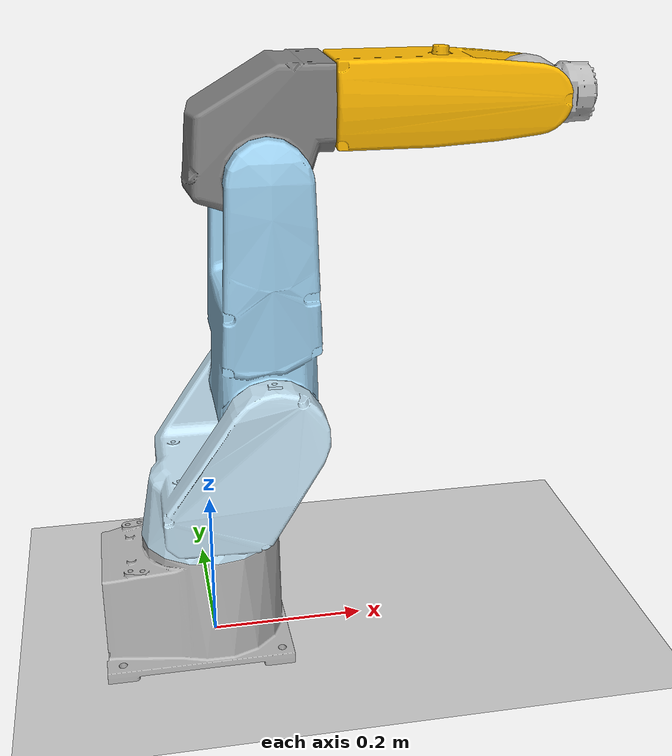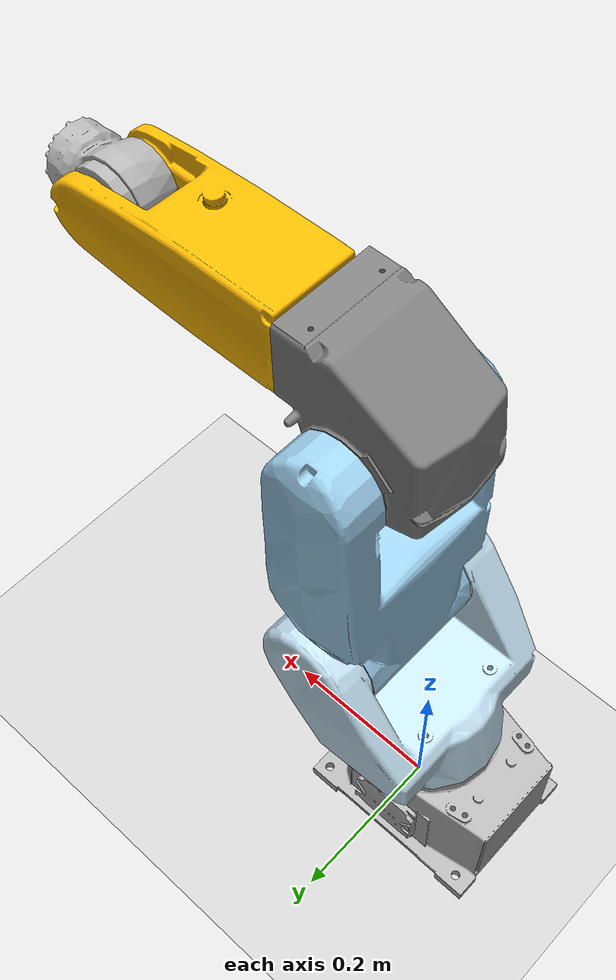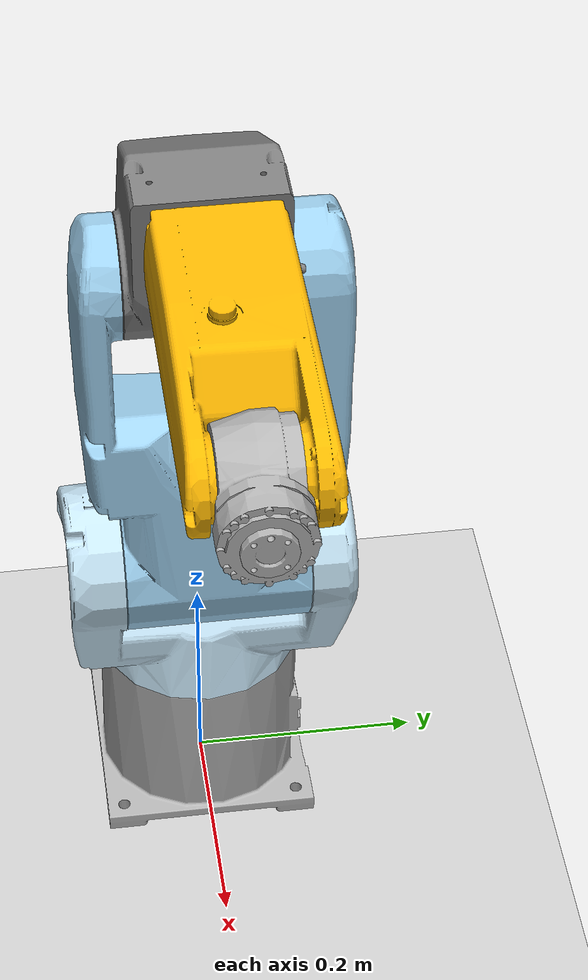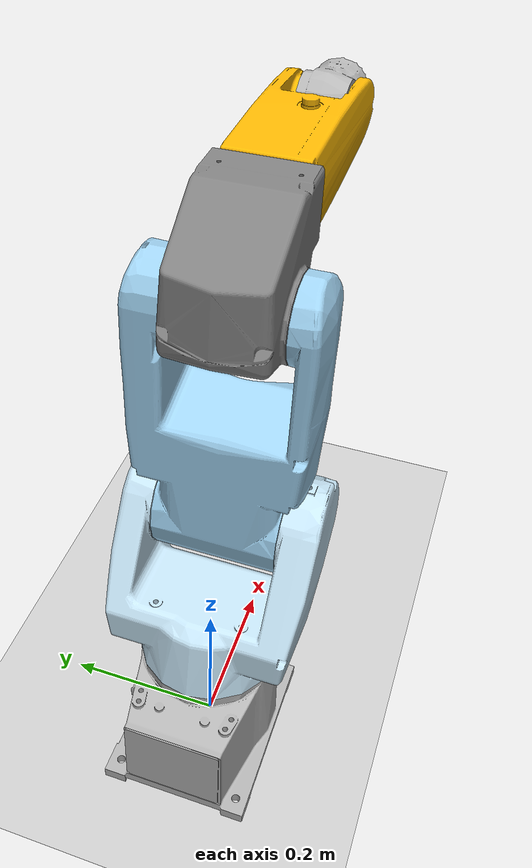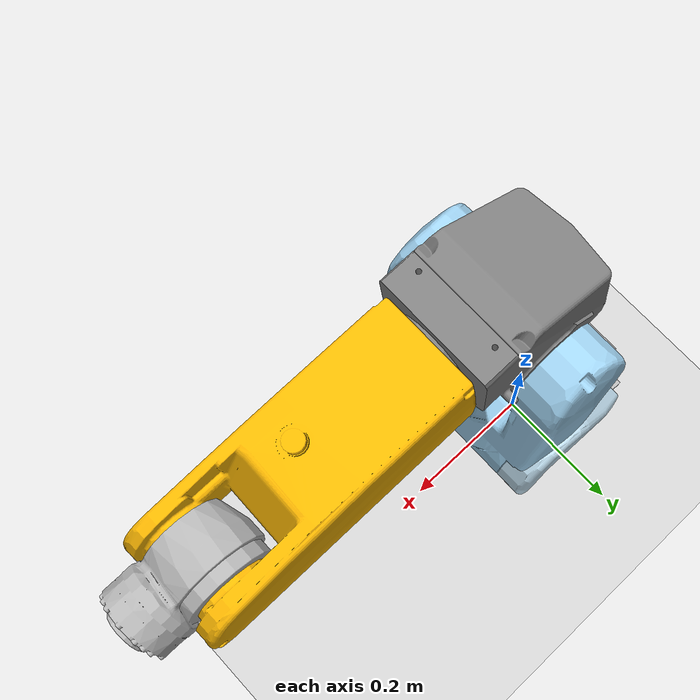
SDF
<?xml version="1.0" ?>
<sdf version="1.9">
  <world name="lr_mate_world">

    <!-- Physics -->
    <physics name="1ms" type="ignored">
      <max_step_size>0.001</max_step_size>
      <real_time_factor>1.0</real_time_factor>
    </physics>

    <!-- Required Ignition Gazebo plugins -->
    <plugin filename="ignition-gazebo-physics-system"
            name="ignition::gazebo::systems::Physics"/>
    <plugin filename="ignition-gazebo-user-commands-system"
            name="ignition::gazebo::systems::UserCommands"/>
    <plugin filename="ignition-gazebo-scene-broadcaster-system"
            name="ignition::gazebo::systems::SceneBroadcaster"/>

    <!-- Sun light -->
    <light name="sun" type="directional">
      <cast_shadows>true</cast_shadows>
      <pose>0 0 10 0 0 0</pose>
      <diffuse>1 1 1 1</diffuse>
      <specular>0.5 0.5 0.5 1</specular>
      <direction>-0.5 0.1 -0.9</direction>
    </light>

    <!-- Ground plane -->
    <model name="ground_plane">
      <static>true</static>
      <link name="link">
        <collision name="collision">
          <geometry>
            <plane>
              <normal>0 0 1</normal>
              <size>100 100</size>
            </plane>
          </geometry>
        </collision>
        <visual name="visual">
          <geometry>
            <plane>
              <normal>0 0 1</normal>
              <size>100 100</size>
            </plane>
          </geometry>
          <material>
            <ambient>0.8 0.8 0.8 1</ambient>
            <diffuse>0.8 0.8 0.8 1</diffuse>
          </material>
        </visual>
      </link>
    </model>

    <!-- LR Mate 200iC — load trực tiếp bằng đường dẫn tuyệt đối -->
    <include>
      <uri>
        file:///home/pread/Project/robot_envirionment/multi-agent-in-arena-simulation/ros2_ws/src/gazebo/sml_description/models/lr_mate_200ic/arm.sdf
      </uri>
      <pose>0 0 0 0 0 0</pose>
    </include>

  </world>
</sdf>

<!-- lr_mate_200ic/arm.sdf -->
<sdf version="1.9">
  <model name="lr_mate_200ic">

    <static>true</static>

    <link name="root">

      <inertial>
        <pose>0 0 0.3 0 0 0</pose>
        <mass>15.0</mass>
        <inertia>
          <ixx>0.5</ixx><ixy>0.0</ixy><ixz>0.0</ixz>
          <iyy>0.5</iyy><iyz>0.0</iyz>
          <izz>0.5</izz>
        </inertia>
      </inertial>

      <collision name="base_collision">
        <pose>0 0 0 0 0 0</pose>
        <geometry>
          <mesh>
            <uri>file:///home/pread/Project/robot_envirionment/multi-agent-in-arena-simulation/ros2_ws/src/gazebo/sml_description/models/lr_mate_200ic/meshes/base.stl</uri>
            <scale>1 1 1</scale>
          </mesh>
        </geometry>
      </collision>

      <!-- axis3 (grey) -->
      <visual name="visual_axis3">
        <pose>0.075 9.32387e-17 0.63 0 0 0</pose>
        <geometry>
          <mesh>
            <uri>file:///home/pread/Project/robot_envirionment/multi-agent-in-arena-simulation/ros2_ws/src/gazebo/sml_description/models/lr_mate_200ic/meshes/axis3.stl</uri>
            <scale>1 1 1</scale>
          </mesh>
        </geometry>
        <material>
          <ambient>0.498 0.498 0.498 1</ambient>
          <diffuse>0.498 0.498 0.498 1</diffuse>
          <specular>0.1 0.1 0.1 1</specular>
        </material>
      </visual>

      <!-- axis2 (blue_light) -->
      <visual name="visual_axis2">
        <pose>0.075 1.1391e-16 0.33 0 0 0</pose>
        <geometry>
          <mesh>
            <uri>file:///home/pread/Project/robot_envirionment/multi-agent-in-arena-simulation/ros2_ws/src/gazebo/sml_description/models/lr_mate_200ic/meshes/axis2.stl</uri>
            <scale>1 1 1</scale>
          </mesh>
        </geometry>
        <material>
          <ambient>0.615 0.811 0.929 1</ambient>
          <diffuse>0.615 0.811 0.929 1</diffuse>
          <specular>0.1 0.1 0.1 1</specular>
        </material>
      </visual>

      <!-- axis1 (white_blue) -->
      <visual name="visual_axis1">
        <pose>0 0 0.33 0 0 0</pose>
        <geometry>
          <mesh>
            <uri>file:///home/pread/Project/robot_envirionment/multi-agent-in-arena-simulation/ros2_ws/src/gazebo/sml_description/models/lr_mate_200ic/meshes/axis1.stl</uri>
            <scale>1 1 1</scale>
          </mesh>
        </geometry>
        <material>
          <ambient>0.768 0.886 0.952 1</ambient>
          <diffuse>0.768 0.886 0.952 1</diffuse>
          <specular>0.1 0.1 0.1 1</specular>
        </material>
      </visual>

      <!-- axis4 (orange) -->
      <visual name="visual_axis4">
        <pose>0.395 6.245e-17 0.705 0 0 0</pose>
        <geometry>
          <mesh>
            <uri>file:///home/pread/Project/robot_envirionment/multi-agent-in-arena-simulation/ros2_ws/src/gazebo/sml_description/models/lr_mate_200ic/meshes/axis4.stl</uri>
            <scale>1 1 1</scale>
          </mesh>
        </geometry>
        <material>
          <ambient>0.98 0.713 0.003 1</ambient>
          <diffuse>0.98 0.713 0.003 1</diffuse>
          <specular>0.1 0.1 0.1 1</specular>
        </material>
      </visual>

      <!-- base -->
      <visual name="visual_base">
        <pose>0 0 0 0 0 0</pose>
        <geometry>
          <mesh>
            <uri>file:///home/pread/Project/robot_envirionment/multi-agent-in-arena-simulation/ros2_ws/src/gazebo/sml_description/models/lr_mate_200ic/meshes/base.stl</uri>
            <scale>1 1 1</scale>
          </mesh>
        </geometry>
        <material>
          <ambient>0.7 0.7 0.7 1</ambient>
          <diffuse>0.7 0.7 0.7 1</diffuse>
          <specular>0.1 0.1 0.1 1</specular>
        </material>
      </visual>

      <!-- axis6 -->
      <visual name="visual_axis6">
        <pose>0.475 3.46945e-18 0.705 0 -1.5708 3.14159</pose>
        <geometry>
          <mesh>
            <uri>file:///home/pread/Project/robot_envirionment/multi-agent-in-arena-simulation/ros2_ws/src/gazebo/sml_description/models/lr_mate_200ic/meshes/axis6.stl</uri>
            <scale>1 1 1</scale>
          </mesh>
        </geometry>
        <material>
          <ambient>0.7 0.7 0.7 1</ambient>
          <diffuse>0.7 0.7 0.7 1</diffuse>
          <specular>0.1 0.1 0.1 1</specular>
        </material>
      </visual>

      <!-- axis5 -->
      <visual name="visual_axis5">
        <pose>0.395 -4.85723e-17 0.705 0 0 0</pose>
        <geometry>
          <mesh>
            <uri>file:///home/pread/Project/robot_envirionment/multi-agent-in-arena-simulation/ros2_ws/src/gazebo/sml_description/models/lr_mate_200ic/meshes/axis5.stl</uri>
            <scale>1 1 1</scale>
          </mesh>
        </geometry>
        <material>
          <ambient>0.7 0.7 0.7 1</ambient>
          <diffuse>0.7 0.7 0.7 1</diffuse>
          <specular>0.1 0.1 0.1 1</specular>
        </material>
      </visual>

    </link>
  </model>
</sdf>
